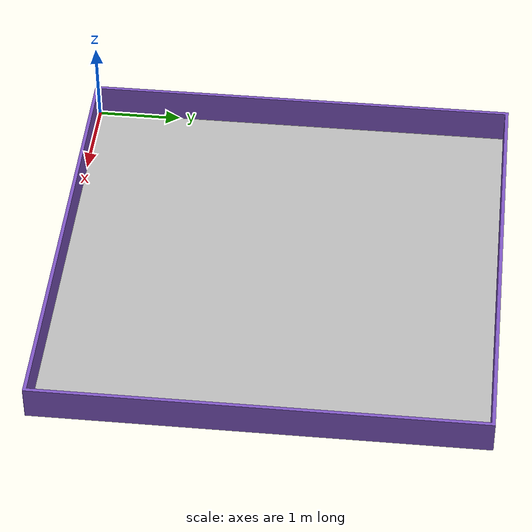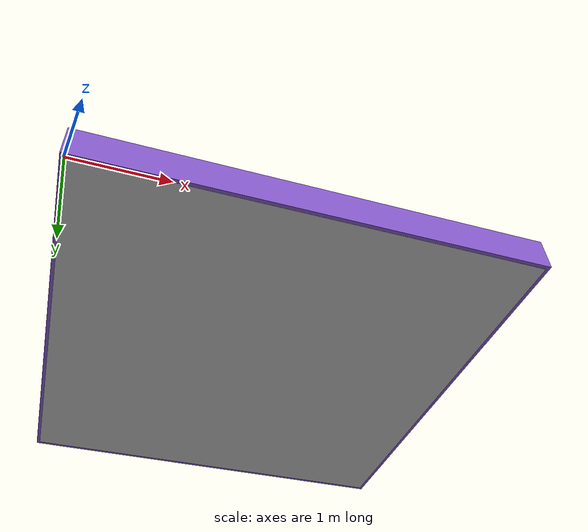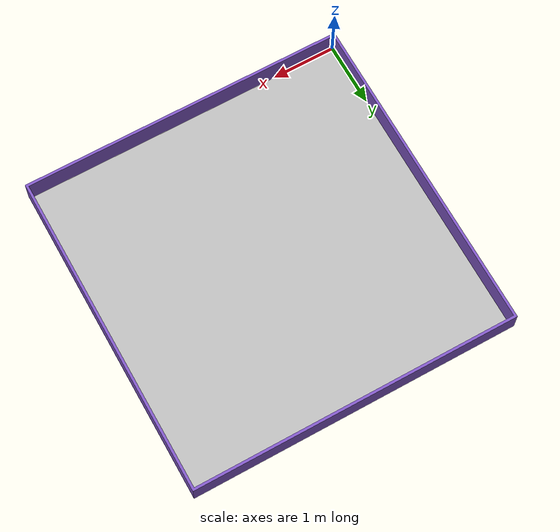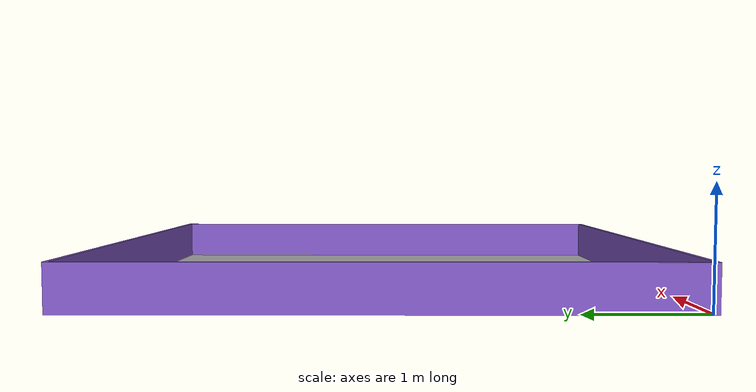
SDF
<?xml version='1.0' encoding='utf-8'?>
<sdf version="1.4">
<model name="template_model">
<link name="track">
<collision name="collision">
<pose>0 0 0 0 0 0</pose>
<geometry>
<mesh>
<uri>model://meshes/physicar_base/physicar_base_collision.dae</uri>
</mesh>
</geometry>
</collision>
<visual name="visual">
<pose>0 0 0 0 0 0</pose>
<geometry>
<mesh>
<uri>model://meshes/physicar_base/physicar_base.dae</uri>
</mesh>
</geometry>
</visual>
<visual name="wall">
<pose>0 0 0 0 0 0</pose>
<geometry>
<mesh>
<uri>model://meshes/physicar_base/wall.dae</uri>
</mesh>
</geometry>
</visual>
<collision name="wall_collision">
<pose>0 0 0 0 0 0</pose>
<geometry>
<mesh>
<uri>model://meshes/physicar_base/wall.dae</uri>
</mesh>
</geometry>
</collision>
</link>
<static>1</static>
</model>
</sdf>
